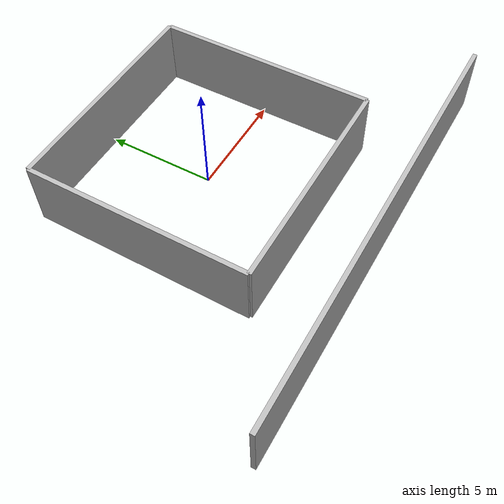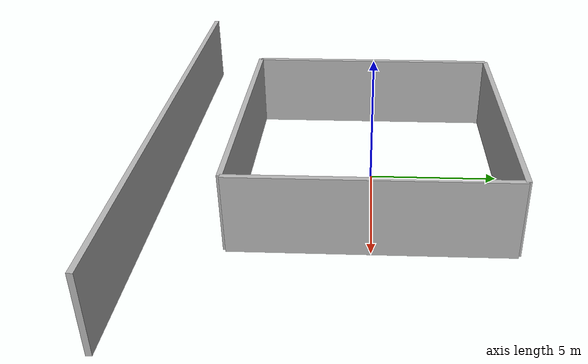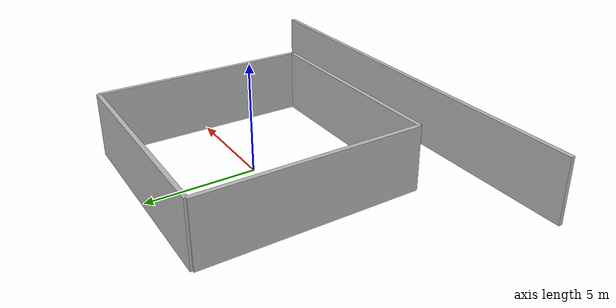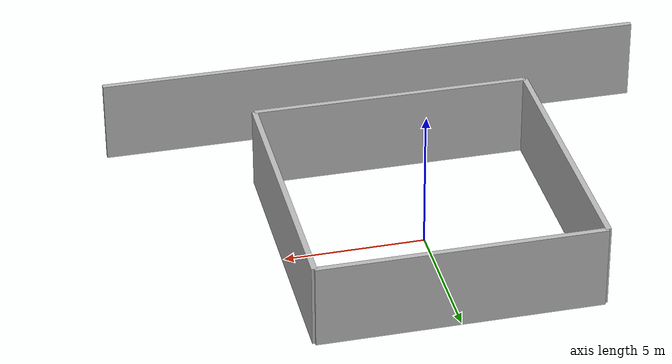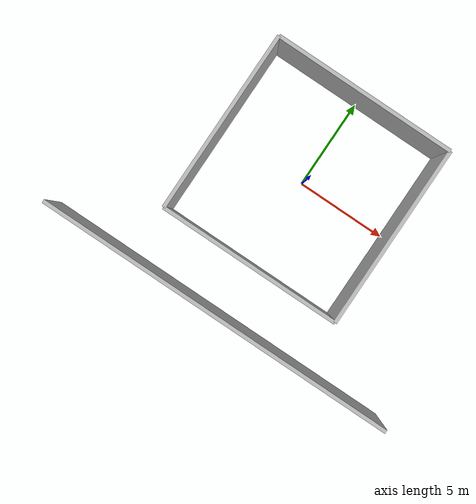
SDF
<?xml version="1.0" ?>
<sdf version="1.4">
<world name="small_square">
    <model name="wall_1">
        <static>1</static>
        <pose>-5 0 1.5 0 0 0</pose>
        <link name="wall_1">
            <pose>0 0 0 0 0 0</pose>
            <inertial>
                <mass>5</mass>
                <inertia>
                    <ixx>0.0</ixx>
                    <ixy>0.0</ixy>
                    <ixz>0.0</ixz>
                    <iyy>0.0</iyy>
                    <iyz>0.0</iyz>
                    <izz>0.0</izz>
                </inertia>
            </inertial>
            <collision name="wall_1_collision">
                <geometry>
                    <box>
                        <size>0.2 10.0 3.0</size>
                    </box>
                </geometry>
            </collision>
            <visual name="wall_1_visual">
               <geometry>
                   <box>
                       <size>0.2 10.0 3.0</size>
                   </box>
               </geometry>
            </visual>
        </link>
    </model>

    <model name="wall_2">
        <static>1</static>
        <pose>0 5.0 1.5 0 0 0</pose>
        <link name="wall_2">
            <pose>0 0 0 0 0 0</pose>
            <inertial>
                <mass>5</mass>
                <inertia>
                    <ixx>0.0</ixx>
                    <ixy>0.0</ixy>
                    <ixz>0.0</ixz>
                    <iyy>0.0</iyy>
                    <iyz>0.0</iyz>
                    <izz>0.0</izz>
                </inertia>
            </inertial>
            <collision name="wall_2_collision">
                <geometry>
                    <box>
                        <size>10.0 0.2 3.0</size>
                    </box>
                </geometry>
            </collision>
            <visual name="wall_2_visual">
               <geometry>
                   <box>
                       <size>10.0 0.2 3.0</size>
                   </box>
               </geometry>
            </visual>
        </link>
    </model>

    <model name="wall_3">
        <static>1</static>
        <pose>5.0 0.0 1.5 0 0 0</pose>
        <link name="wall_3">
            <pose>0 0 0 0 0 0</pose>
            <inertial>
                <mass>5</mass>
                <inertia>
                    <ixx>0.0</ixx>
                    <ixy>0.0</ixy>
                    <ixz>0.0</ixz>
                    <iyy>0.0</iyy>
                    <iyz>0.0</iyz>
                    <izz>0.0</izz>
                </inertia>
            </inertial>
            <collision name="wall_3_collision">
                <geometry>
                    <box>
                        <size>0.2 10.0 3.0</size>
                    </box>
                </geometry>
            </collision>
            <visual name="wall_3_visual">
               <geometry>
                   <box>
                       <size>0.2 10.0 3.0</size>
                   </box>
               </geometry>
            </visual>
        </link>
    </model>

    <model name="wall_4">
        <static>1</static>
        <pose>0.0 -5.0 1.5 0 0 0</pose>
        <link name="wall_4">
            <pose>0 0 0 0 0 0</pose>
            <inertial>
                <mass>5</mass>
                <inertia>
                    <ixx>0.0</ixx>
                    <ixy>0.0</ixy>
                    <ixz>0.0</ixz>
                    <iyy>0.0</iyy>
                    <iyz>0.0</iyz>
                    <izz>0.0</izz>
                </inertia>
            </inertial>
            <collision name="wall_4_collision">
                <geometry>
                    <box>
                        <size>10.0 0.2 3.0</size>
                    </box>
                </geometry>
            </collision>
            <visual name="wall_4_visual">
               <geometry>
                   <box>
                       <size>10.0 0.2 3.0</size>
                   </box>
               </geometry>
            </visual>
        </link>
    </model>

    <model name="goal">
        <static>1</static>
        <pose>0.0 -8.0 1.5 0 0 0</pose>
        <link name="goal">
            <pose>0 0 0 0 0 0</pose>
            <inertial>
                <mass>5</mass>
                <inertia>
                    <ixx>0.0</ixx>
                    <ixy>0.0</ixy>
                    <ixz>0.0</ixz>
                    <iyy>0.0</iyy>
                    <iyz>0.0</iyz>
                    <izz>0.0</izz>
                </inertia>
            </inertial>
            <collision name="goal_collision">
                <geometry>
                    <box>
                        <size>20.0 0.2 3.0</size>
                    </box>
                </geometry>
            </collision>
            <visual name="goal_visual">
               <geometry>
                   <box>
                       <size>20.0 0.2 3.0</size>
                   </box>
               </geometry>
            </visual>
        </link>
    </model>
</world>
</sdf>
